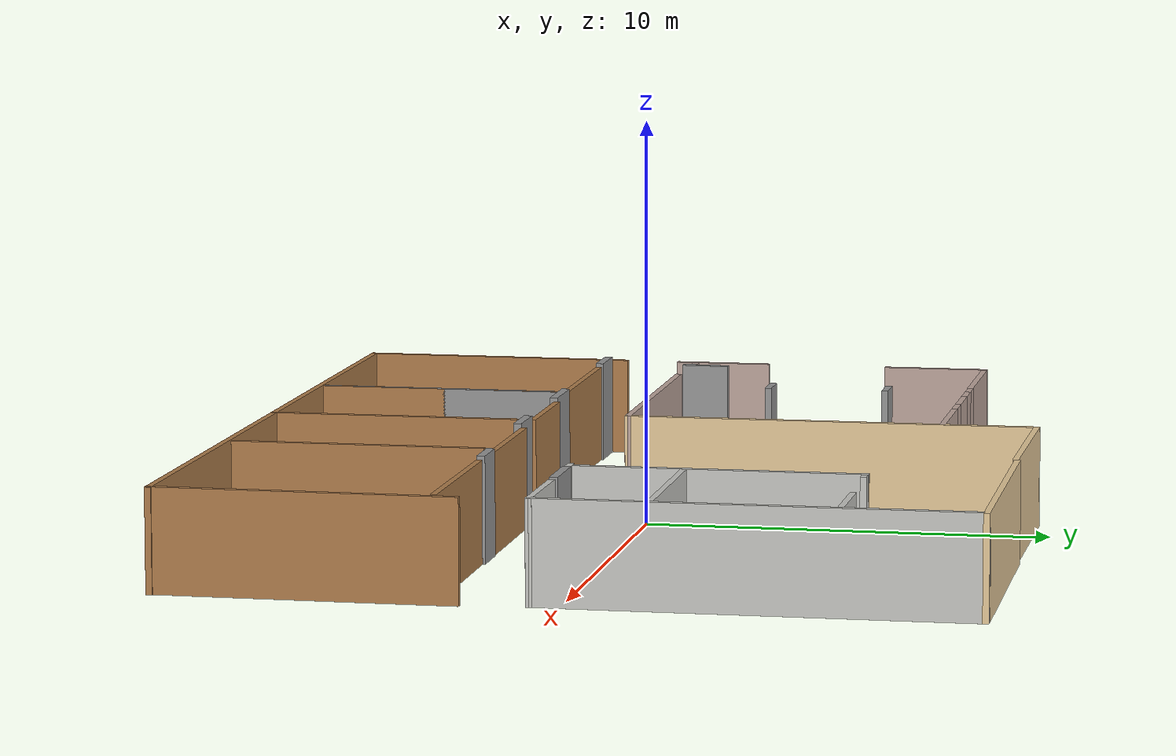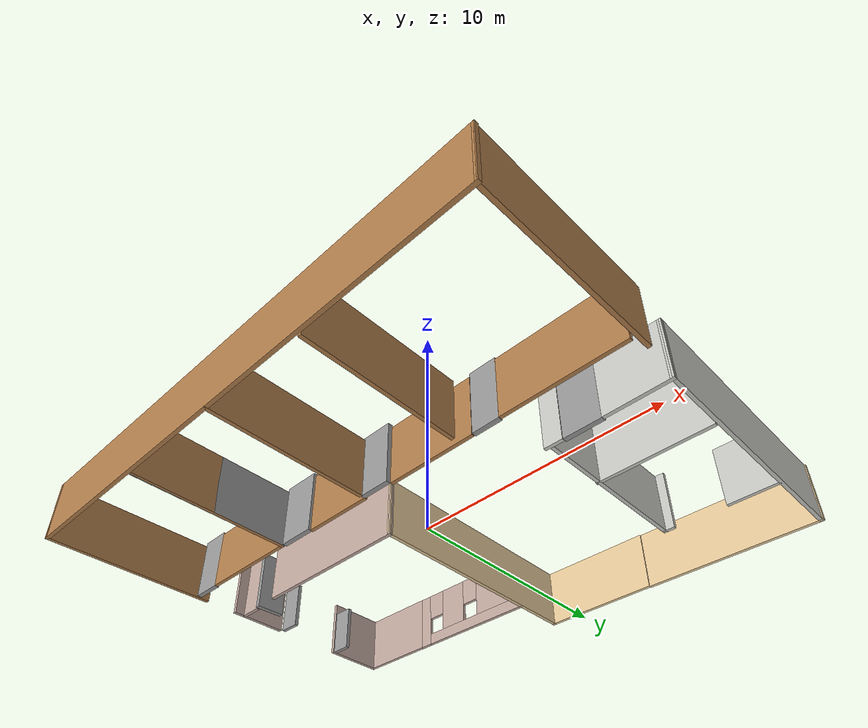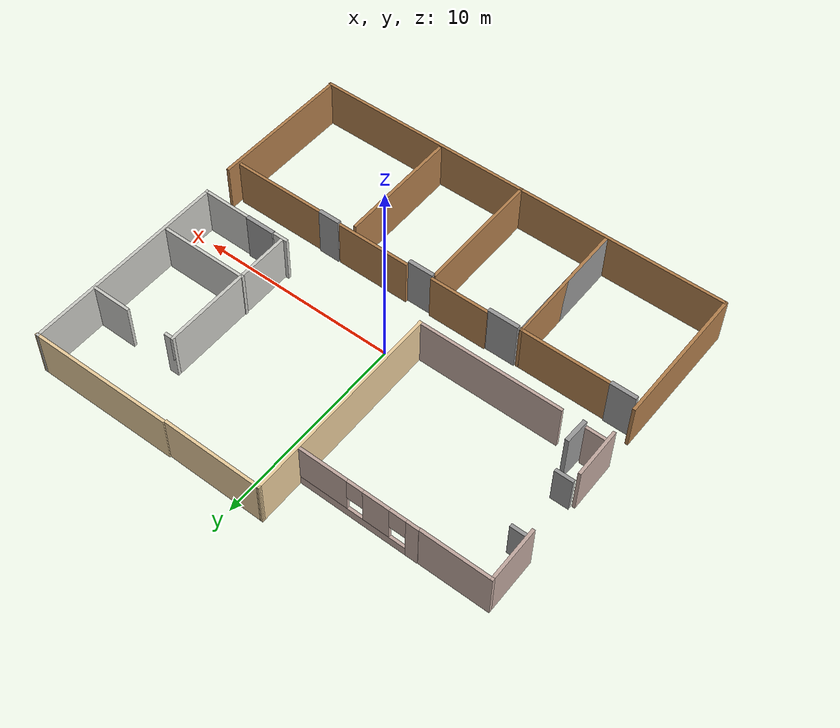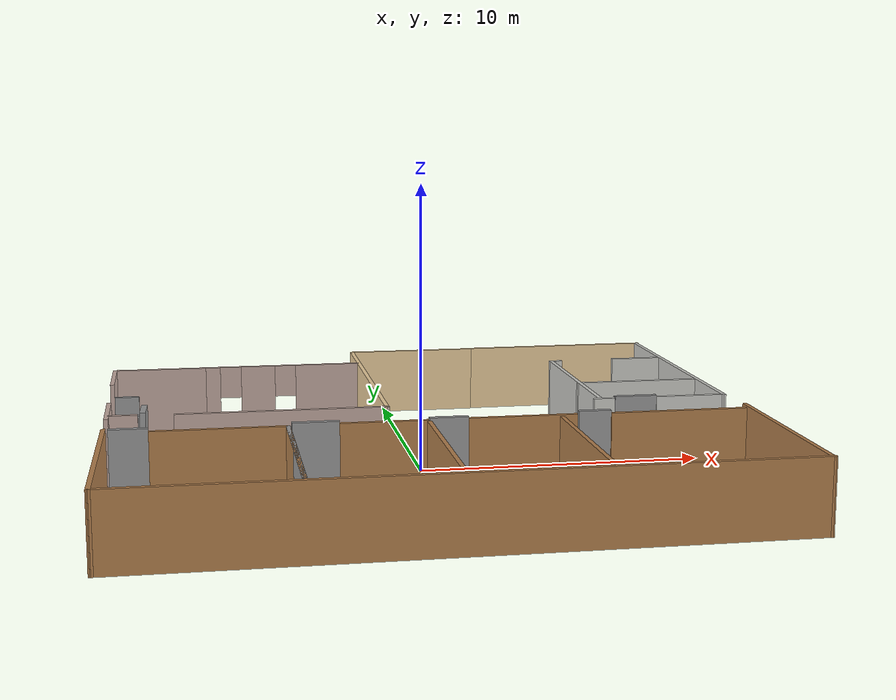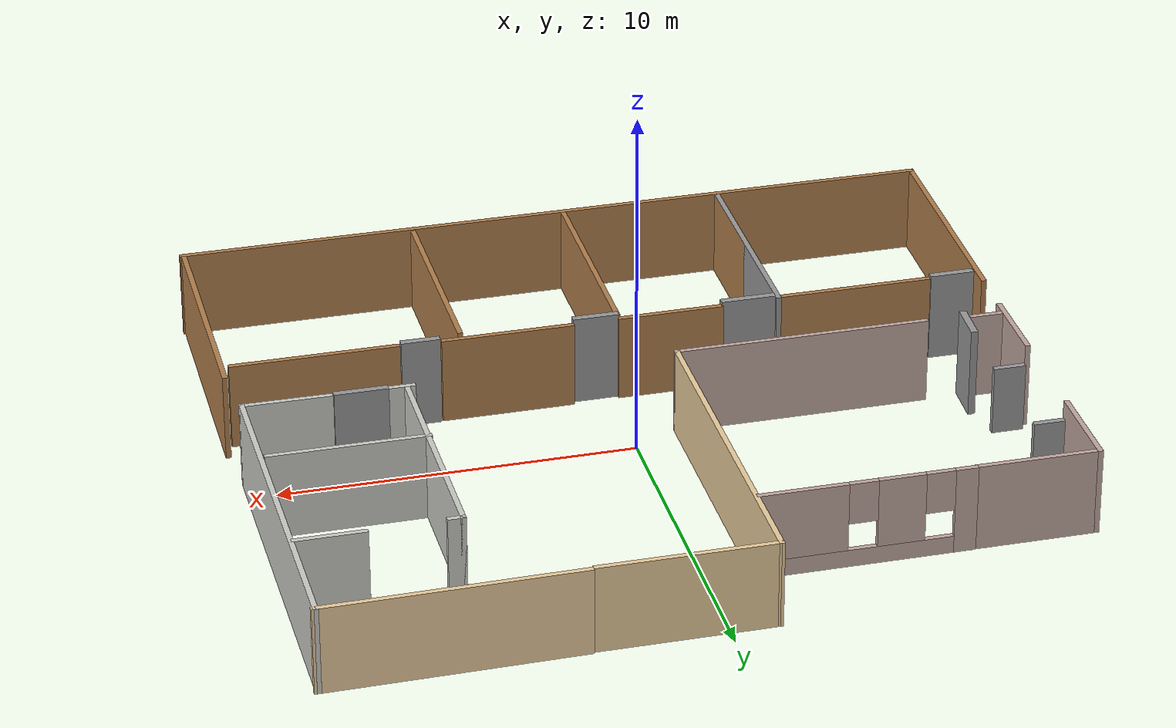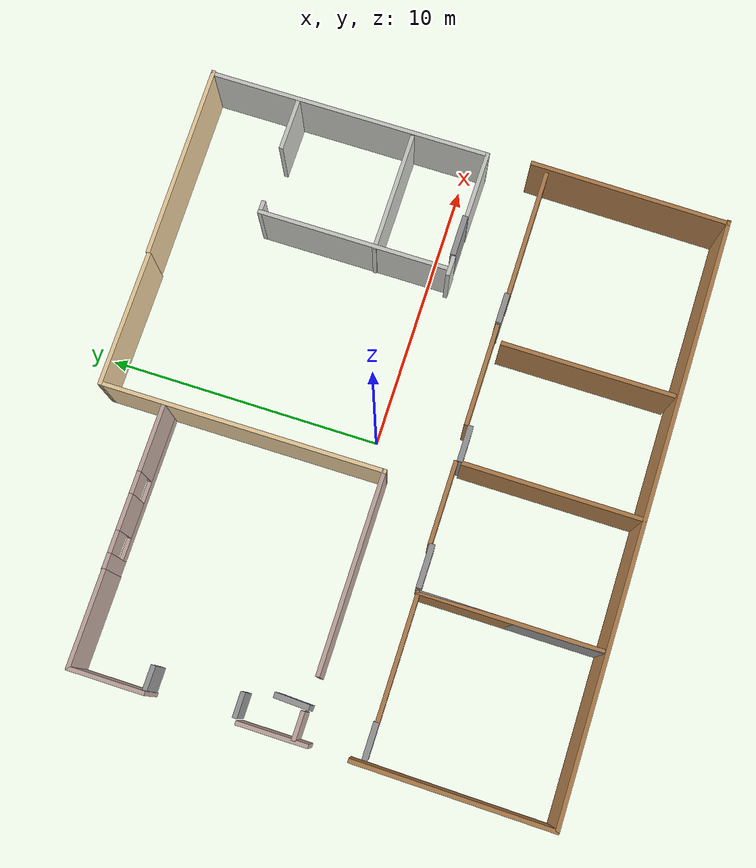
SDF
<?xml version='1.0'?>
<sdf version='1.6'>
  <model name='Building'>
    <pose frame=''>0.067527 0.052233 0 0 -0 0</pose>
    <link name='Door_12'>
      <collision name='Door_12_Collision'>
        <geometry>
          <box>
            <size>1.264 0.2 2.6</size>
          </box>
        </geometry>
        <pose frame=''>0 0 1.3 0 -0 0</pose>
      </collision>
      <visual name='Door_12_Visual'>
        <pose frame=''>0 0 1.3 0 -0 0</pose>
        <geometry>
          <box>
            <size>1.264 0.2 2.6</size>
          </box>
        </geometry>
        <material>
          <script>
            <uri>file://media/materials/scripts/gazebo.material</uri>
            <name>Gazebo/Grey</name>
          </script>
        </material>
      </visual>
      <pose frame=''>-9.9622 -3.0454 0 0 -0 0</pose>
    </link>
    <link name='Door_13'>
      <collision name='Door_13_Collision'>
        <geometry>
          <box>
            <size>1.224 0.2 2.6</size>
          </box>
        </geometry>
        <pose frame=''>0 0 1.3 0 -0 0</pose>
      </collision>
      <visual name='Door_13_Visual'>
        <pose frame=''>0 0 1.3 0 -0 0</pose>
        <geometry>
          <box>
            <size>1.224 0.2 2.6</size>
          </box>
        </geometry>
        <material>
          <script>
            <uri>file://media/materials/scripts/gazebo.material</uri>
            <name>Gazebo/Grey</name>
          </script>
        </material>
      </visual>
      <pose frame=''>-9.53741 -0.213505 0 0 0 -1.61176</pose>
    </link>
    <link name='Door_14'>
      <collision name='Door_14_Collision'>
        <geometry>
          <box>
            <size>0.9 0.17 2</size>
          </box>
        </geometry>
        <pose frame=''>0 0 1 0 -0 0</pose>
      </collision>
      <visual name='Door_14_Visual'>
        <pose frame=''>0 0 1 0 -0 0</pose>
        <geometry>
          <box>
            <size>0.9 0.17 2</size>
          </box>
        </geometry>
        <material>
          <script>
            <uri>file://media/materials/scripts/gazebo.material</uri>
            <name>Gazebo/Grey</name>
          </script>
        </material>
      </visual>
      <pose frame=''>-10.2656 4.56025 0 0 -0 0</pose>
    </link>
    <link name='Door_15'>
      <collision name='Door_15_Collision'>
        <geometry>
          <box>
            <size>0.9 0.17 2</size>
          </box>
        </geometry>
        <pose frame=''>0 0 1 0 -0 0</pose>
      </collision>
      <visual name='Door_15_Visual'>
        <pose frame=''>0 0 1 0 -0 0</pose>
        <geometry>
          <box>
            <size>0.9 0.17 2</size>
          </box>
        </geometry>
        <material>
          <script>
            <uri>file://media/materials/scripts/gazebo.material</uri>
            <name>Gazebo/Grey</name>
          </script>
        </material>
      </visual>
      <pose frame=''>-10.1847 1.44517 0 0 -0 0</pose>
    </link>
    <link name='Door_16'>
      <collision name='Door_16_Collision'>
        <geometry>
          <box>
            <size>1.507 0.2 2.55</size>
          </box>
        </geometry>
        <pose frame=''>0 0 1.275 0 -0 0</pose>
      </collision>
      <visual name='Door_16_Visual'>
        <pose frame=''>0 0 1.275 0 -0 0</pose>
        <geometry>
          <box>
            <size>1.507 0.2 2.55</size>
          </box>
        </geometry>
        <material>
          <script>
            <uri>file://media/materials/scripts/gazebo.material</uri>
            <name>Gazebo/Grey</name>
          </script>
        </material>
      </visual>
      <pose frame=''>7.4337 -0.698972 0 0 -0 0</pose>
    </link>
    <link name='Door_5'>
      <collision name='Door_5_Collision'>
        <geometry>
          <box>
            <size>1.102 0.2 2.6</size>
          </box>
        </geometry>
        <pose frame=''>0 0 1.3 0 -0 0</pose>
      </collision>
      <visual name='Door_5_Visual'>
        <pose frame=''>0 0 1.3 0 -0 0</pose>
        <geometry>
          <box>
            <size>1.102 0.2 2.6</size>
          </box>
        </geometry>
        <material>
          <script>
            <uri>file://media/materials/scripts/gazebo.material</uri>
            <name>Gazebo/Grey</name>
          </script>
        </material>
      </visual>
      <pose frame=''>5.33001 -2.92403 0 0 -0 0</pose>
    </link>
    <link name='Door_6'>
      <collision name='Door_6_Collision'>
        <geometry>
          <box>
            <size>1.30456 0.2 2.6</size>
          </box>
        </geometry>
        <pose frame=''>0 0 1.3 0 -0 0</pose>
      </collision>
      <visual name='Door_6_Visual'>
        <pose frame=''>0 0 1.3 0 -0 0</pose>
        <geometry>
          <box>
            <size>1.30456 0.2 2.6</size>
          </box>
        </geometry>
        <material>
          <script>
            <uri>file://media/materials/scripts/gazebo.material</uri>
            <name>Gazebo/Grey</name>
          </script>
        </material>
      </visual>
      <pose frame=''>0.353974 -3.08585 0 0 -0 0</pose>
    </link>
    <link name='Door_7'>
      <collision name='Door_7_Collision'>
        <geometry>
          <box>
            <size>1.54729 0.2 2.6</size>
          </box>
        </geometry>
        <pose frame=''>0 0 1.3 0 -0 0</pose>
      </collision>
      <visual name='Door_7_Visual'>
        <pose frame=''>0 0 1.3 0 -0 0</pose>
        <geometry>
          <box>
            <size>1.54729 0.2 2.6</size>
          </box>
        </geometry>
        <material>
          <script>
            <uri>file://media/materials/scripts/gazebo.material</uri>
            <name>Gazebo/Grey</name>
          </script>
        </material>
      </visual>
      <pose frame=''>-4.01523 -3.0454 0 0 -0 0</pose>
    </link>
    <link name='Wall_100'>
      <collision name='Wall_100_Collision'>
        <geometry>
          <box>
            <size>7 0.15 2.5</size>
          </box>
        </geometry>
        <pose frame=''>0 0 1.25 0 -0 0</pose>
      </collision>
      <visual name='Wall_100_Visual'>
        <pose frame=''>0 0 1.25 0 -0 0</pose>
        <geometry>
          <box>
            <size>7 0.15 2.5</size>
          </box>
        </geometry>
        <material>
          <script>
            <uri>file://media/materials/scripts/gazebo.material</uri>
            <name>Gazebo/CeilingTiled</name>
          </script>
          <ambient>1 1 1 1</ambient>
        </material>
        <meta>
          <layer>0</layer>
        </meta>
      </visual>
      <pose frame=''>6.16803 2.83366 0 0 0 -1.5708</pose>
    </link>
    <link name='Wall_107'>
      <collision name='Wall_107_Collision'>
        <geometry>
          <box>
            <size>4.75 0.15 2.5</size>
          </box>
        </geometry>
        <pose frame=''>0 0 1.25 0 -0 0</pose>
      </collision>
      <visual name='Wall_107_Visual'>
        <pose frame=''>0 0 1.25 0 -0 0</pose>
        <geometry>
          <box>
            <size>4.75 0.15 2.5</size>
          </box>
        </geometry>
        <material>
          <script>
            <uri>file://media/materials/scripts/gazebo.material</uri>
            <name>Gazebo/Wood</name>
          </script>
          <ambient>0.603922 0.4 0.298039 1</ambient>
        </material>
        <meta>
          <layer>0</layer>
        </meta>
      </visual>
      <pose frame=''>8.26901 -2.96448 0 0 -0 3.14159</pose>
    </link>
    <link name='Wall_109'>
      <collision name='Wall_109_Collision'>
        <geometry>
          <box>
            <size>3.75 0.15 2.5</size>
          </box>
        </geometry>
        <pose frame=''>0 0 1.25 0 -0 0</pose>
      </collision>
      <visual name='Wall_109_Visual'>
        <pose frame=''>0 0 1.25 0 -0 0</pose>
        <geometry>
          <box>
            <size>3.75 0.15 2.5</size>
          </box>
        </geometry>
        <material>
          <script>
            <uri>file://media/materials/scripts/gazebo.material</uri>
            <name>Gazebo/Wood</name>
          </script>
          <ambient>0.603922 0.4 0.298039 1</ambient>
        </material>
        <meta>
          <layer>0</layer>
        </meta>
      </visual>
      <pose frame=''>2.86976 -2.92403 0 0 -0 3.14159</pose>
    </link>
    <link name='Wall_114'>
      <collision name='Wall_114_Collision'>
        <geometry>
          <box>
            <size>3 0.15 2.5</size>
          </box>
        </geometry>
        <pose frame=''>0 0 1.25 0 -0 0</pose>
      </collision>
      <visual name='Wall_114_Visual'>
        <pose frame=''>0 0 1.25 0 -0 0</pose>
        <geometry>
          <box>
            <size>3 0.15 2.5</size>
          </box>
        </geometry>
        <material>
          <script>
            <uri>file://media/materials/scripts/gazebo.material</uri>
            <name>Gazebo/Wood</name>
          </script>
          <ambient>0.603922 0.4 0.298039 1</ambient>
        </material>
        <meta>
          <layer>0</layer>
        </meta>
      </visual>
      <pose frame=''>-1.779 -2.96448 0 0 -0 3.14159</pose>
    </link>
    <link name='Wall_116'>
      <collision name='Wall_116_Collision'>
        <geometry>
          <box>
            <size>4.5 0.15 2.5</size>
          </box>
        </geometry>
        <pose frame=''>0 0 1.25 0 -0 0</pose>
      </collision>
      <visual name='Wall_116_Visual'>
        <pose frame=''>0 0 1.25 0 -0 0</pose>
        <geometry>
          <box>
            <size>4.5 0.15 2.5</size>
          </box>
        </geometry>
        <material>
          <script>
            <uri>file://media/materials/scripts/gazebo.material</uri>
            <name>Gazebo/Wood</name>
          </script>
          <ambient>0.603922 0.4 0.298039 1</ambient>
        </material>
        <meta>
          <layer>0</layer>
        </meta>
      </visual>
      <pose frame=''>-7.08148 -3.07404 0 0 -0 3.14159</pose>
    </link>
    <link name='Wall_51'>
      <collision name='Wall_51_Collision'>
        <geometry>
          <box>
            <size>7.12896 0.15 2.5</size>
          </box>
        </geometry>
        <pose frame=''>0 0 1.25 0 -0 0</pose>
      </collision>
      <visual name='Wall_51_Visual'>
        <pose frame=''>0 0 1.25 0 -0 0</pose>
        <geometry>
          <box>
            <size>7.12896 0.15 2.5</size>
          </box>
        </geometry>
        <material>
          <script>
            <uri>file://media/materials/scripts/gazebo.material</uri>
            <name>Gazebo/Wood</name>
          </script>
          <ambient>0.603922 0.4 0.298039 1</ambient>
        </material>
        <meta>
          <layer>0</layer>
        </meta>
      </visual>
      <pose frame=''>-10.8 -6.10067 0 0 0 -1.58239</pose>
    </link>
    <link name='Wall_52'>
      <collision name='Wall_52_Collision'>
        <geometry>
          <box>
            <size>21.75 0.15 2.5</size>
          </box>
        </geometry>
        <pose frame=''>0 0 1.25 0 -0 0</pose>
      </collision>
      <visual name='Wall_52_Visual'>
        <pose frame=''>0 0 1.25 0 -0 0</pose>
        <geometry>
          <box>
            <size>21.75 0.15 2.5</size>
          </box>
        </geometry>
        <material>
          <script>
            <uri>file://media/materials/scripts/gazebo.material</uri>
            <name>Gazebo/Wood</name>
          </script>
          <ambient>0.603922 0.4 0.298039 1</ambient>
        </material>
        <meta>
          <layer>0</layer>
        </meta>
      </visual>
      <pose frame=''>1.3e-05 -9.58992 0 0 -0 0</pose>
    </link>
    <link name='Wall_53'>
      <collision name='Wall_53_Collision'>
        <geometry>
          <box>
            <size>7.33863 0.15 2.5</size>
          </box>
        </geometry>
        <pose frame=''>0 0 1.25 0 -0 0</pose>
      </collision>
      <visual name='Wall_53_Visual'>
        <pose frame=''>0 0 1.25 0 -0 0</pose>
        <geometry>
          <box>
            <size>7.33863 0.15 2.5</size>
          </box>
        </geometry>
        <material>
          <script>
            <uri>file://media/materials/scripts/gazebo.material</uri>
            <name>Gazebo/Wood</name>
          </script>
          <ambient>0.603922 0.4 0.298039 1</ambient>
        </material>
        <meta>
          <layer>0</layer>
        </meta>
      </visual>
      <pose frame=''>10.8 -5.99583 0 0 -0 1.55954</pose>
    </link>
    <link name='Wall_68'>
      <collision name='Wall_68_Collision'>
        <geometry>
          <box>
            <size>6.5 0.15 2.5</size>
          </box>
        </geometry>
        <pose frame=''>0 0 1.25 0 -0 0</pose>
      </collision>
      <visual name='Wall_68_Visual'>
        <pose frame=''>0 0 1.25 0 -0 0</pose>
        <geometry>
          <box>
            <size>6.5 0.15 2.5</size>
          </box>
        </geometry>
        <material>
          <script>
            <uri>file://media/materials/scripts/gazebo.material</uri>
            <name>Gazebo/Grey</name>
          </script>
          <ambient>1 1 1 1</ambient>
        </material>
        <meta>
          <layer>0</layer>
        </meta>
      </visual>
      <pose frame=''>-4.90648 -6.24904 0 0 0 -1.5708</pose>
    </link>
    <link name='Wall_69'>
      <collision name='Wall_69_Collision'>
        <geometry>
          <box>
            <size>6.5 0.15 2.5</size>
          </box>
        </geometry>
        <pose frame=''>0 0 1.25 0 -0 0</pose>
      </collision>
      <visual name='Wall_69_Visual'>
        <pose frame=''>0 0 1.25 0 -0 0</pose>
        <geometry>
          <box>
            <size>6.5 0.15 2.5</size>
          </box>
        </geometry>
        <material>
          <script>
            <uri>file://media/materials/scripts/gazebo.material</uri>
            <name>Gazebo/Wood</name>
          </script>
          <ambient>0.603922 0.4 0.298039 1</ambient>
        </material>
        <meta>
          <layer>0</layer>
        </meta>
      </visual>
      <pose frame=''>-4.90648 -6.24904 0 0 -0 1.5708</pose>
    </link>
    <link name='Wall_71'>
      <collision name='Wall_71_Collision'>
        <geometry>
          <box>
            <size>6.5 0.15 2.5</size>
          </box>
        </geometry>
        <pose frame=''>0 0 1.25 0 -0 0</pose>
      </collision>
      <visual name='Wall_71_Visual'>
        <pose frame=''>0 0 1.25 0 -0 0</pose>
        <geometry>
          <box>
            <size>6.5 0.15 2.5</size>
          </box>
        </geometry>
        <material>
          <script>
            <uri>file://media/materials/scripts/gazebo.material</uri>
            <name>Gazebo/Wood</name>
          </script>
          <ambient>0.603922 0.4 0.298039 1</ambient>
        </material>
        <meta>
          <layer>0</layer>
        </meta>
      </visual>
      <pose frame=''>-0.300474 -6.39572 0 0 -0 1.5708</pose>
    </link>
    <link name='Wall_73'>
      <collision name='Wall_73_Collision'>
        <geometry>
          <box>
            <size>6.25 0.15 2.5</size>
          </box>
        </geometry>
        <pose frame=''>0 0 1.25 0 -0 0</pose>
      </collision>
      <visual name='Wall_73_Visual'>
        <pose frame=''>0 0 1.25 0 -0 0</pose>
        <geometry>
          <box>
            <size>6.25 0.15 2.5</size>
          </box>
        </geometry>
        <material>
          <script>
            <uri>file://media/materials/scripts/gazebo.material</uri>
            <name>Gazebo/Wood</name>
          </script>
          <ambient>0.603922 0.4 0.298039 1</ambient>
        </material>
        <meta>
          <layer>0</layer>
        </meta>
      </visual>
      <pose frame=''>4.14462 -6.3397 0 0 -0 1.5708</pose>
    </link>
    <link name='Wall_75'>
      <collision name='Wall_75_Collision'>
        <geometry>
          <box>
            <size>10.5 0.15 2.5</size>
          </box>
        </geometry>
        <pose frame=''>0 0 1.25 0 -0 0</pose>
      </collision>
      <visual name='Wall_75_Visual'>
        <pose frame=''>0 0 1.25 0 -0 0</pose>
        <geometry>
          <box>
            <size>10.5 0.15 2.5</size>
          </box>
        </geometry>
        <material>
          <script>
            <uri>file://media/materials/scripts/gazebo.material</uri>
            <name>Gazebo/CeilingTiled</name>
          </script>
          <ambient>1 1 1 1</ambient>
        </material>
        <meta>
          <layer>0</layer>
        </meta>
      </visual>
      <pose frame=''>10.6614 4.41494 0 0 -0 1.5708</pose>
    </link>
    <link name='Wall_76'>
      <collision name='Wall_76_Collision'>
        <geometry>
          <box>
            <size>7.24417 0.15 2.5</size>
          </box>
        </geometry>
        <pose frame=''>0 0 1.25 0 -0 0</pose>
      </collision>
      <visual name='Wall_76_Visual'>
        <pose frame=''>0 0 1.25 0 -0 0</pose>
        <geometry>
          <box>
            <size>7.24417 0.15 2.5</size>
          </box>
        </geometry>
        <material>
          <script>
            <uri>file://media/materials/scripts/gazebo.material</uri>
            <name>Gazebo/Grey</name>
          </script>
          <ambient>0.921569 0.807843 0.615686 1</ambient>
        </material>
        <meta>
          <layer>0</layer>
        </meta>
      </visual>
      <pose frame=''>7.15502 9.54948 0 0 0 -3.13019</pose>
    </link>
    <link name='Wall_78'>
      <collision name='Wall_78_Collision'>
        <geometry>
          <box>
            <size>5 0.15 2.5</size>
          </box>
        </geometry>
        <pose frame=''>0 0 1.25 0 -0 0</pose>
      </collision>
      <visual name='Wall_78_Visual'>
        <pose frame=''>0 0 1.25 0 -0 0</pose>
        <geometry>
          <box>
            <size>5 0.15 2.5</size>
          </box>
        </geometry>
        <material>
          <script>
            <uri>file://media/materials/scripts/gazebo.material</uri>
            <name>Gazebo/Grey</name>
          </script>
          <ambient>0.921569 0.807843 0.615686 1</ambient>
        </material>
        <meta>
          <layer>0</layer>
        </meta>
      </visual>
      <pose frame=''>1.03576 9.45672 0 0 -0 3.14159</pose>
    </link>
    <link name='Wall_79'>
      <collision name='Wall_79_Collision'>
        <geometry>
          <box>
            <size>10.3677 0.15 2.5</size>
          </box>
        </geometry>
        <pose frame=''>0 0 1.25 0 -0 0</pose>
      </collision>
      <visual name='Wall_79_Visual'>
        <pose frame=''>0 0 1.25 0 -0 0</pose>
        <geometry>
          <box>
            <size>10.3677 0.15 2.5</size>
          </box>
        </geometry>
        <material>
          <script>
            <uri>file://media/materials/scripts/gazebo.material</uri>
            <name>Gazebo/Grey</name>
          </script>
          <ambient>0.921569 0.807843 0.615686 1</ambient>
        </material>
        <meta>
          <layer>0</layer>
        </meta>
      </visual>
      <pose frame=''>-1.37786 4.34787 0 0 0 -1.56857</pose>
    </link>
    <link name='Wall_80'>
      <collision name='Wall_80_Collision'>
        <geometry>
          <box>
            <size>7.25 0.15 2.5</size>
          </box>
        </geometry>
        <pose frame=''>0 0 1.25 0 -0 0</pose>
      </collision>
      <visual name='Wall_80_Visual'>
        <pose frame=''>0 0 1.25 0 -0 0</pose>
        <geometry>
          <box>
            <size>7.25 0.15 2.5</size>
          </box>
        </geometry>
        <material>
          <script>
            <uri>file://media/materials/scripts/gazebo.material</uri>
            <name>Gazebo/Grey</name>
          </script>
          <ambient>0.760784 0.662745 0.627451 1</ambient>
        </material>
        <meta>
          <layer>0</layer>
        </meta>
      </visual>
      <pose frame=''>-4.91649 -0.760978 0 0 -0 3.14159</pose>
    </link>
    <link name='Wall_82'>
      <collision name='Wall_82_Collision'>
        <geometry>
          <box>
            <size>1 0.15 2.5</size>
          </box>
        </geometry>
        <pose frame=''>0 0 1.25 0 -0 0</pose>
      </collision>
      <visual name='Wall_82_Visual'>
        <pose frame=''>0 0 1.25 0 -0 0</pose>
        <geometry>
          <box>
            <size>1 0.15 2.5</size>
          </box>
        </geometry>
        <material>
          <script>
            <uri>file://media/materials/scripts/gazebo.material</uri>
            <name>Gazebo/Grey</name>
          </script>
          <ambient>0.760784 0.662745 0.627451 1</ambient>
        </material>
        <meta>
          <layer>0</layer>
        </meta>
      </visual>
      <pose frame=''>-10.2186 -0.659725 0 0 -0 3.14159</pose>
    </link>
    <link name='Wall_84'>
      <collision name='Wall_84_Collision'>
        <geometry>
          <box>
            <size>2.5 0.15 2.5</size>
          </box>
        </geometry>
        <pose frame=''>0 0 1.25 0 -0 0</pose>
      </collision>
      <visual name='Wall_84_Visual'>
        <pose frame=''>0 0 1.25 0 -0 0</pose>
        <geometry>
          <box>
            <size>2.5 0.15 2.5</size>
          </box>
        </geometry>
        <material>
          <script>
            <uri>file://media/materials/scripts/gazebo.material</uri>
            <name>Gazebo/Grey</name>
          </script>
          <ambient>0.760784 0.662745 0.627451 1</ambient>
        </material>
        <meta>
          <layer>0</layer>
        </meta>
      </visual>
      <pose frame=''>-10.7394 0.072092 0 0 -0 1.5708</pose>
    </link>
    <link name='Wall_86'>
      <collision name='Wall_86_Collision'>
        <geometry>
          <box>
            <size>2.75 0.15 2.5</size>
          </box>
        </geometry>
        <pose frame=''>0 0 1.25 0 -0 0</pose>
      </collision>
      <visual name='Wall_86_Visual'>
        <pose frame=''>0 0 1.25 0 -0 0</pose>
        <geometry>
          <box>
            <size>2.75 0.15 2.5</size>
          </box>
        </geometry>
        <material>
          <script>
            <uri>file://media/materials/scripts/gazebo.material</uri>
            <name>Gazebo/Grey</name>
          </script>
          <ambient>0.760784 0.662745 0.627451 1</ambient>
        </material>
        <meta>
          <layer>0</layer>
        </meta>
      </visual>
      <pose frame=''>-10.7595 5.80878 0 0 -0 1.5708</pose>
    </link>
    <link name='Wall_87'>
      <collision name='Wall_87_Collision'>
        <geometry>
          <box>
            <size>3.5 0.15 2.5</size>
          </box>
        </geometry>
        <pose frame=''>0 0 1.25 0 -0 0</pose>
      </collision>
      <visual name='Wall_87_Visual'>
        <pose frame=''>0 0 1.25 0 -0 0</pose>
        <geometry>
          <box>
            <size>3.5 0.15 2.5</size>
          </box>
        </geometry>
        <material>
          <script>
            <uri>file://media/materials/scripts/gazebo.material</uri>
            <name>Gazebo/Grey</name>
          </script>
          <ambient>0.760784 0.662745 0.627451 1</ambient>
        </material>
        <meta>
          <layer>0</layer>
        </meta>
      </visual>
      <pose frame=''>-9.08453 7.10878 0 0 -0 0</pose>
    </link>
    <link name='Wall_89'>
      <pose frame=''>-4.39819 7.12354 0 0 -0 0</pose>
      <visual name='Wall_89_Visual_0'>
        <pose frame=''>-2.69184 0 1.25 0 -0 0</pose>
        <geometry>
          <box>
            <size>0.61631 0.15 2.5</size>
          </box>
        </geometry>
        <material>
          <script>
            <uri>file://media/materials/scripts/gazebo.material</uri>
            <name>Gazebo/Grey</name>
          </script>
          <ambient>0.760784 0.662745 0.627451 1</ambient>
        </material>
        <meta>
          <layer>0</layer>
        </meta>
      </visual>
      <collision name='Wall_89_Collision_0'>
        <geometry>
          <box>
            <size>0.61631 0.15 2.5</size>
          </box>
        </geometry>
        <pose frame=''>-2.69184 0 1.25 0 -0 0</pose>
      </collision>
      <visual name='Wall_89_Visual_1'>
        <pose frame=''>0.308155 0 0.25 0 -0 0</pose>
        <geometry>
          <box>
            <size>5.38369 0.15 0.5</size>
          </box>
        </geometry>
        <material>
          <script>
            <uri>file://media/materials/scripts/gazebo.material</uri>
            <name>Gazebo/Grey</name>
          </script>
          <ambient>0.760784 0.662745 0.627451 1</ambient>
        </material>
        <meta>
          <layer>0</layer>
        </meta>
      </visual>
      <collision name='Wall_89_Collision_1'>
        <geometry>
          <box>
            <size>5.38369 0.15 0.5</size>
          </box>
        </geometry>
        <pose frame=''>0.308155 0 0.25 0 -0 0</pose>
      </collision>
      <visual name='Wall_89_Visual_2'>
        <pose frame=''>-0.931845 0 1.5 0 -0 0</pose>
        <geometry>
          <box>
            <size>1.30369 0.15 2</size>
          </box>
        </geometry>
        <material>
          <script>
            <uri>file://media/materials/scripts/gazebo.material</uri>
            <name>Gazebo/Grey</name>
          </script>
          <ambient>0.760784 0.662745 0.627451 1</ambient>
        </material>
        <meta>
          <layer>0</layer>
        </meta>
      </visual>
      <collision name='Wall_89_Collision_2'>
        <geometry>
          <box>
            <size>1.30369 0.15 2</size>
          </box>
        </geometry>
        <pose frame=''>-0.931845 0 1.5 0 -0 0</pose>
      </collision>
      <visual name='Wall_89_Visual_3'>
        <pose frame=''>1.76 0 1.5 0 -0 0</pose>
        <geometry>
          <box>
            <size>2.48 0.15 2</size>
          </box>
        </geometry>
        <material>
          <script>
            <uri>file://media/materials/scripts/gazebo.material</uri>
            <name>Gazebo/Grey</name>
          </script>
          <ambient>0.760784 0.662745 0.627451 1</ambient>
        </material>
        <meta>
          <layer>0</layer>
        </meta>
      </visual>
      <collision name='Wall_89_Collision_3'>
        <geometry>
          <box>
            <size>2.48 0.15 2</size>
          </box>
        </geometry>
        <pose frame=''>1.76 0 1.5 0 -0 0</pose>
      </collision>
      <visual name='Wall_89_Visual_4'>
        <pose frame=''>-1.98369 0 1.9 0 -0 0</pose>
        <geometry>
          <box>
            <size>0.8 0.15 1.2</size>
          </box>
        </geometry>
        <material>
          <script>
            <uri>file://media/materials/scripts/gazebo.material</uri>
            <name>Gazebo/Grey</name>
          </script>
          <ambient>0.760784 0.662745 0.627451 1</ambient>
        </material>
        <meta>
          <layer>0</layer>
        </meta>
      </visual>
      <collision name='Wall_89_Collision_4'>
        <geometry>
          <box>
            <size>0.8 0.15 1.2</size>
          </box>
        </geometry>
        <pose frame=''>-1.98369 0 1.9 0 -0 0</pose>
      </collision>
      <visual name='Wall_89_Visual_5'>
        <pose frame=''>0.119999 0 1.9 0 -0 0</pose>
        <geometry>
          <box>
            <size>0.8 0.15 1.2</size>
          </box>
        </geometry>
        <material>
          <script>
            <uri>file://media/materials/scripts/gazebo.material</uri>
            <name>Gazebo/Grey</name>
          </script>
          <ambient>0.760784 0.662745 0.627451 1</ambient>
        </material>
        <meta>
          <layer>0</layer>
        </meta>
      </visual>
      <collision name='Wall_89_Collision_5'>
        <geometry>
          <box>
            <size>0.8 0.15 1.2</size>
          </box>
        </geometry>
        <pose frame=''>0.119999 0 1.9 0 -0 0</pose>
      </collision>
    </link>
    <link name='Wall_91'>
      <collision name='Wall_91_Collision'>
        <geometry>
          <box>
            <size>2 0.15 2.5</size>
          </box>
        </geometry>
        <pose frame=''>0 0 1.25 0 -0 0</pose>
      </collision>
      <visual name='Wall_91_Visual'>
        <pose frame=''>0 0 1.25 0 -0 0</pose>
        <geometry>
          <box>
            <size>2 0.15 2.5</size>
          </box>
        </geometry>
        <material>
          <script>
            <uri>file://media/materials/scripts/gazebo.material</uri>
            <name>Gazebo/CeilingTiled</name>
          </script>
          <ambient>1 1 1 1</ambient>
        </material>
        <meta>
          <layer>0</layer>
        </meta>
      </visual>
      <pose frame=''>9.65597 6.319 0 0 -0 3.14159</pose>
    </link>
    <link name='Wall_93'>
      <collision name='Wall_93_Collision'>
        <geometry>
          <box>
            <size>4.5 0.15 2.5</size>
          </box>
        </geometry>
        <pose frame=''>0 0 1.25 0 -0 0</pose>
      </collision>
      <visual name='Wall_93_Visual'>
        <pose frame=''>0 0 1.25 0 -0 0</pose>
        <geometry>
          <box>
            <size>4.5 0.15 2.5</size>
          </box>
        </geometry>
        <material>
          <script>
            <uri>file://media/materials/scripts/gazebo.material</uri>
            <name>Gazebo/CeilingTiled</name>
          </script>
          <ambient>1 1 1 1</ambient>
        </material>
        <meta>
          <layer>0</layer>
        </meta>
      </visual>
      <pose frame=''>8.3054 1.99458 0 0 -0 3.14159</pose>
    </link>
    <link name='Wall_95'>
      <collision name='Wall_95_Collision'>
        <geometry>
          <box>
            <size>2.56042 0.15 2.5</size>
          </box>
        </geometry>
        <pose frame=''>0 0 1.25 0 -0 0</pose>
      </collision>
      <visual name='Wall_95_Visual'>
        <pose frame=''>0 0 1.25 0 -0 0</pose>
        <geometry>
          <box>
            <size>2.56042 0.15 2.5</size>
          </box>
        </geometry>
        <material>
          <script>
            <uri>file://media/materials/scripts/gazebo.material</uri>
            <name>Gazebo/CeilingTiled</name>
          </script>
          <ambient>1 1 1 1</ambient>
        </material>
        <meta>
          <layer>0</layer>
        </meta>
      </visual>
      <pose frame=''>9.45625 -0.750464 0 0 -0 3.13363</pose>
    </link>
    <link name='Wall_97'>
      <collision name='Wall_97_Collision'>
        <geometry>
          <box>
            <size>0.75 0.15 2.5</size>
          </box>
        </geometry>
        <pose frame=''>0 0 1.25 0 -0 0</pose>
      </collision>
      <visual name='Wall_97_Visual'>
        <pose frame=''>0 0 1.25 0 -0 0</pose>
        <geometry>
          <box>
            <size>0.75 0.15 2.5</size>
          </box>
        </geometry>
        <material>
          <script>
            <uri>file://media/materials/scripts/gazebo.material</uri>
            <name>Gazebo/CeilingTiled</name>
          </script>
          <ambient>1 1 1 1</ambient>
        </material>
        <meta>
          <layer>0</layer>
        </meta>
      </visual>
      <pose frame=''>6.29848 -0.740864 0 0 -0 3.14159</pose>
    </link>
    <link name='Wall_99'>
      <collision name='Wall_99_Collision'>
        <geometry>
          <box>
            <size>0.5 0.15 2.5</size>
          </box>
        </geometry>
        <pose frame=''>0 0 1.25 0 -0 0</pose>
      </collision>
      <visual name='Wall_99_Visual'>
        <pose frame=''>0 0 1.25 0 -0 0</pose>
        <geometry>
          <box>
            <size>0.5 0.15 2.5</size>
          </box>
        </geometry>
        <material>
          <script>
            <uri>file://media/materials/scripts/gazebo.material</uri>
            <name>Gazebo/CeilingTiled</name>
          </script>
          <ambient>1 1 1 1</ambient>
        </material>
        <meta>
          <layer>0</layer>
        </meta>
      </visual>
      <pose frame=''>6.34303 6.25866 0 0 -0 3.14159</pose>
    </link>
    <static>1</static>
  </model>
</sdf>
